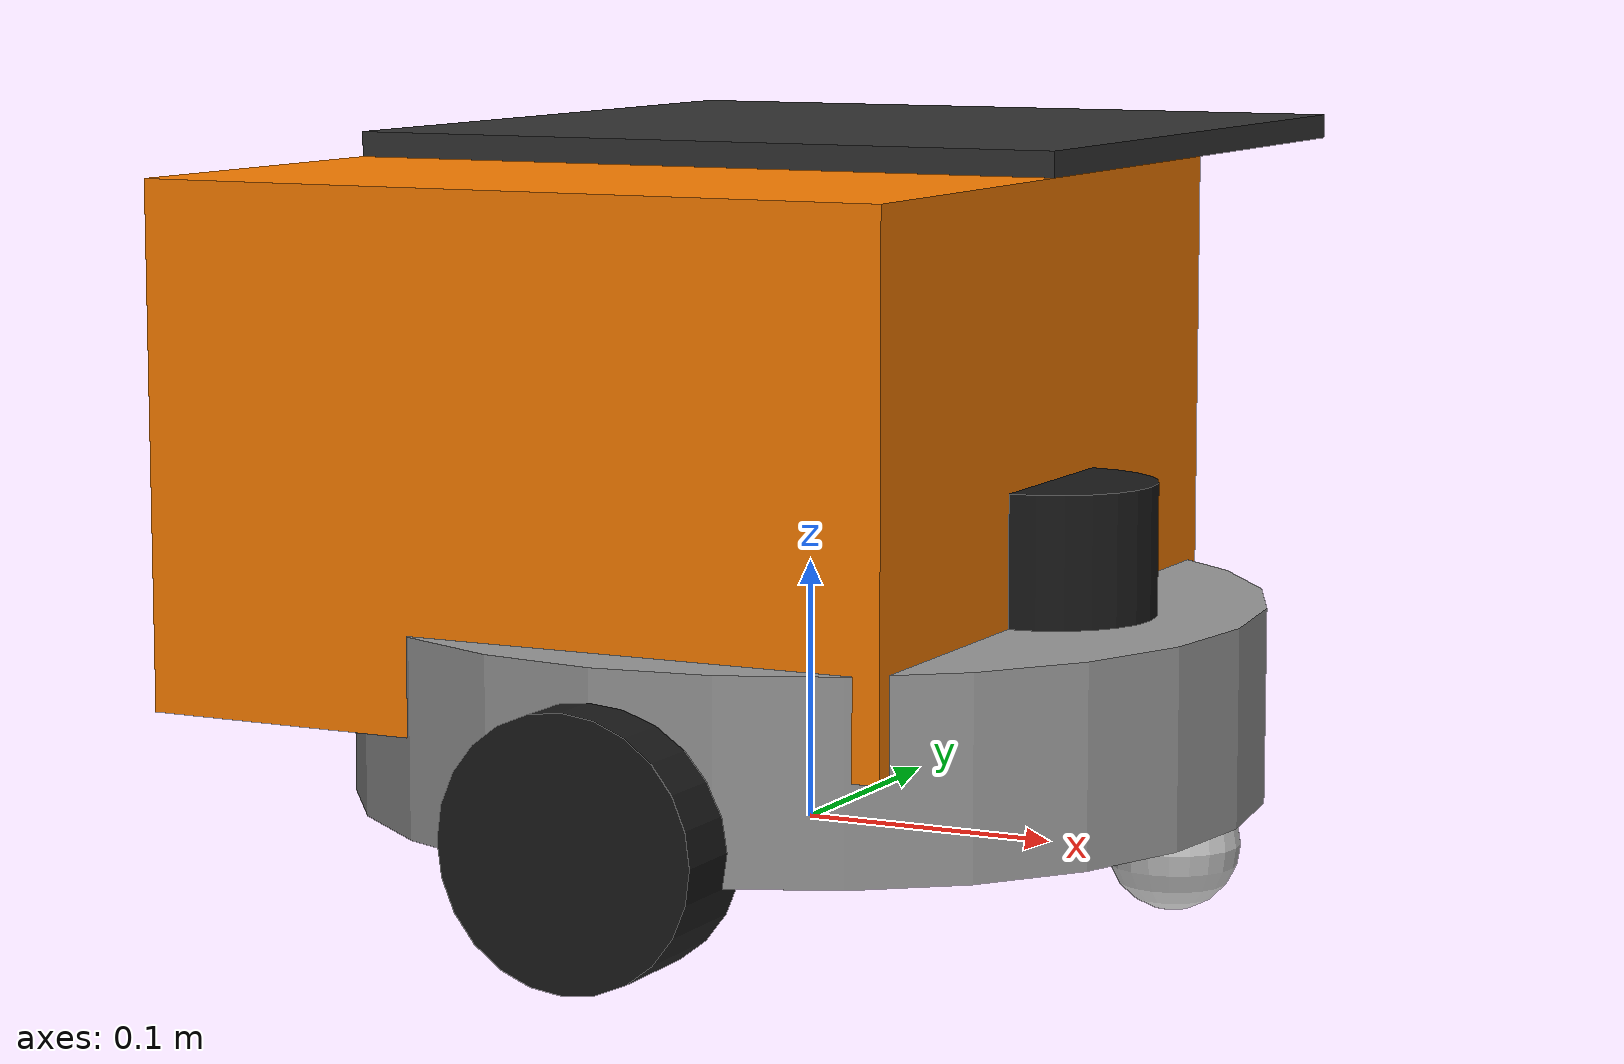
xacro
<?xml version="1.0"?>
<robot name="food_delivery_robot" xmlns:xacro="http://www.ros.org/wiki/xacro">

  <!-- Include compartment macro -->
  <xacro:include filename="$(find food_robot_description)/urdf/compartment.xacro"/>

  <!-- ── Properties ──────────────────────────────────────────── -->
  <xacro:property name="base_radius"      value="0.175"/>
  <xacro:property name="base_height"      value="0.075"/>
  <xacro:property name="base_mass"        value="5.0"/>
  <xacro:property name="wheel_radius"     value="0.05"/>
  <xacro:property name="wheel_width"      value="0.04"/>
  <xacro:property name="wheel_mass"       value="0.5"/>
  <xacro:property name="wheel_sep"        value="0.35"/>
  <xacro:property name="caster_radius"    value="0.025"/>
  <xacro:property name="PI"              value="3.14159265359"/>

  <!-- ── Inertia helpers ─────────────────────────────────────── -->
  <xacro:macro name="cylinder_inertia" params="m r h">
    <inertial>
      <mass value="${m}"/>
      <inertia ixx="${m*(3*r*r+h*h)/12}" ixy="0" ixz="0"
               iyy="${m*(3*r*r+h*h)/12}" iyz="0"
               izz="${m*r*r/2}"/>
    </inertial>
  </xacro:macro>

  <xacro:macro name="sphere_inertia" params="m r">
    <inertial>
      <mass value="${m}"/>
      <inertia ixx="${2*m*r*r/5}" ixy="0" ixz="0"
               iyy="${2*m*r*r/5}" iyz="0"
               izz="${2*m*r*r/5}"/>
    </inertial>
  </xacro:macro>

  <!-- ============================================================
       LINKS
       ============================================================ -->

  <!-- Base footprint (ground truth origin) -->
  <link name="base_footprint"/>

  <!-- Base link -->
  <link name="base_link">
    <visual>
      <geometry>
        <cylinder radius="${base_radius}" length="${base_height}"/>
      </geometry>
      <material name="grey">
        <color rgba="0.6 0.6 0.6 1.0"/>
      </material>
    </visual>
    <collision>
      <geometry>
        <cylinder radius="${base_radius}" length="${base_height}"/>
      </geometry>
    </collision>
    <xacro:cylinder_inertia m="${base_mass}" r="${base_radius}" h="${base_height}"/>
  </link>

  <!-- Left wheel -->
  <link name="left_wheel_link">
    <visual>
      <geometry>
        <cylinder radius="${wheel_radius}" length="${wheel_width}"/>
      </geometry>
      <material name="black">
        <color rgba="0.1 0.1 0.1 1.0"/>
      </material>
    </visual>
    <collision>
      <geometry>
        <cylinder radius="${wheel_radius}" length="${wheel_width}"/>
      </geometry>
    </collision>
    <xacro:cylinder_inertia m="${wheel_mass}" r="${wheel_radius}" h="${wheel_width}"/>
  </link>

  <!-- Right wheel -->
  <link name="right_wheel_link">
    <visual>
      <geometry>
        <cylinder radius="${wheel_radius}" length="${wheel_width}"/>
      </geometry>
      <material name="black"/>
    </visual>
    <collision>
      <geometry>
        <cylinder radius="${wheel_radius}" length="${wheel_width}"/>
      </geometry>
    </collision>
    <xacro:cylinder_inertia m="${wheel_mass}" r="${wheel_radius}" h="${wheel_width}"/>
  </link>

  <!-- Front caster -->
  <link name="front_caster_link">
    <visual>
      <geometry>
        <sphere radius="${caster_radius}"/>
      </geometry>
      <material name="light_grey">
        <color rgba="0.8 0.8 0.8 1.0"/>
      </material>
    </visual>
    <collision>
      <geometry>
        <sphere radius="${caster_radius}"/>
      </geometry>
    </collision>
    <xacro:sphere_inertia m="0.1" r="${caster_radius}"/>
  </link>

  <!-- Lidar -->
  <link name="lidar_link">
    <visual>
      <geometry>
        <cylinder radius="0.04" length="0.05"/>
      </geometry>
      <material name="black"/>
    </visual>
    <collision>
      <geometry>
        <cylinder radius="0.04" length="0.05"/>
      </geometry>
    </collision>
    <xacro:cylinder_inertia m="0.1" r="0.04" h="0.05"/>
  </link>

  <!-- ============================================================
       JOINTS
       ============================================================ -->

  <!-- base_footprint → base_link -->
  <joint name="base_joint" type="fixed">
    <parent link="base_footprint"/>
    <child  link="base_link"/>
    <origin xyz="0 0 0.05" rpy="0 0 0"/>
  </joint>

  <!-- base_link → left_wheel_link -->
  <joint name="left_wheel_joint" type="continuous">
    <parent link="base_link"/>
    <child  link="left_wheel_link"/>
    <origin xyz="0 ${wheel_sep/2} -0.025" rpy="${-PI/2} 0 0"/>
    <axis xyz="0 0 1"/>
    <dynamics damping="0.1" friction="0.1"/>
  </joint>

  <!-- base_link → right_wheel_link -->
  <joint name="right_wheel_joint" type="continuous">
    <parent link="base_link"/>
    <child  link="right_wheel_link"/>
    <origin xyz="0 ${-wheel_sep/2} -0.025" rpy="${-PI/2} 0 0"/>
    <axis xyz="0 0 1"/>
    <dynamics damping="0.1" friction="0.1"/>
  </joint>

  <!-- base_link → front_caster -->
  <joint name="front_caster_joint" type="fixed">
    <parent link="base_link"/>
    <child  link="front_caster_link"/>
    <origin xyz="0.15 0 -0.045" rpy="0 0 0"/>
  </joint>

  <!-- base_link → lidar -->
  <joint name="lidar_joint" type="fixed">
    <parent link="base_link"/>
    <child  link="lidar_link"/>
    <origin xyz="0.1 0 0.0625" rpy="0 0 0"/>
  </joint>

  <!-- ── Compartment (using macro) ─────────────────────────── -->
  <xacro:compartment prefix="food_"
                     parent="base_link"
                     origin_xyz="-0.05 0 0.1"
                     origin_rpy="0 0 0"/>

  <!-- ============================================================
       GAZEBO PROPERTIES
       ============================================================ -->

  <gazebo reference="base_link">
    <material>Gazebo/Grey</material>
  </gazebo>

  <gazebo reference="left_wheel_link">
    <material>Gazebo/Black</material>
    <mu1>1.0</mu1>
    <mu2>1.0</mu2>
  </gazebo>

  <gazebo reference="right_wheel_link">
    <material>Gazebo/Black</material>
    <mu1>1.0</mu1>
    <mu2>1.0</mu2>
  </gazebo>

  <gazebo reference="front_caster_link">
    <material>Gazebo/Grey</material>
    <mu1>0.0</mu1>
    <mu2>0.0</mu2>
  </gazebo>

  <!-- Laser scanner plugin on lidar_link -->
  <gazebo reference="lidar_link">
    <material>Gazebo/Black</material>
    <sensor type="ray" name="laser_sensor">
      <pose>0 0 0 0 0 0</pose>
      <visualize>true</visualize>
      <update_rate>10</update_rate>
      <ray>
        <scan>
          <horizontal>
            <samples>360</samples>
            <resolution>1</resolution>
            <min_angle>-3.14159</min_angle>
            <max_angle>3.14159</max_angle>
          </horizontal>
        </scan>
        <range>
          <min>0.12</min>
          <max>8.0</max>
          <resolution>0.01</resolution>
        </range>
        <noise>
          <type>gaussian</type>
          <mean>0.0</mean>
          <stddev>0.01</stddev>
        </noise>
      </ray>
      <plugin name="gazebo_ros_laser" filename="libgazebo_ros_laser.so">
        <topicName>/scan</topicName>
        <frameName>lidar_link</frameName>
      </plugin>
    </sensor>
  </gazebo>

  <!-- Differential drive plugin -->
  <gazebo>
    <plugin name="differential_drive_controller" filename="libgazebo_ros_diff_drive.so">
      <leftJoint>left_wheel_joint</leftJoint>
      <rightJoint>right_wheel_joint</rightJoint>
      <wheelSeparation>${wheel_sep}</wheelSeparation>
      <wheelDiameter>${2*wheel_radius}</wheelDiameter>
      <robotBaseFrame>base_footprint</robotBaseFrame>
      <commandTopic>cmd_vel</commandTopic>
      <odometryTopic>odom</odometryTopic>
      <odometryFrame>odom</odometryFrame>
      <publishWheelTF>false</publishWheelTF>
      <publishOdomTF>true</publishOdomTF>
      <publishWheelJointState>true</publishWheelJointState>
      <wheelAcceleration>1.0</wheelAcceleration>
      <wheelTorque>20</wheelTorque>
      <updateRate>30</updateRate>
      <legacyMode>false</legacyMode>
    </plugin>
  </gazebo>

</robot>

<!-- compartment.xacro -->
<robot xmlns:xacro="http://www.ros.org/wiki/xacro">

  <xacro:macro name="compartment" params="prefix parent origin_xyz origin_rpy">

    <!-- ── Compartment base box ─────────────────────────────────── -->
    <link name="${prefix}compartment_base_link">
      <visual>
        <geometry>
          <box size="0.30 0.30 0.20"/>
        </geometry>
        <material name="orange">
          <color rgba="1.0 0.5 0.0 1.0"/>
        </material>
      </visual>
      <collision>
        <geometry>
          <box size="0.30 0.30 0.20"/>
        </geometry>
      </collision>
      <inertial>
        <mass value="0.5"/>
        <!-- Solid box inertia: I = m/12*(y^2+z^2), etc. -->
        <inertia ixx="0.00542" ixy="0.0" ixz="0.0"
                 iyy="0.00542" iyz="0.0"
                 izz="0.00750"/>
      </inertial>
    </link>

    <!-- Joint: attach compartment base to parent -->
    <joint name="${prefix}compartment_base_joint" type="fixed">
      <parent link="${parent}"/>
      <child  link="${prefix}compartment_base_link"/>
      <origin xyz="${origin_xyz}" rpy="${origin_rpy}"/>
    </joint>

    <!-- ── Lid link ──────────────────────────────────────────────── -->
    <link name="${prefix}lid_link">
      <visual>
        <origin xyz="0 0 0" rpy="0 0 0"/>
        <geometry>
          <box size="0.30 0.30 0.01"/>
        </geometry>
        <material name="dark_grey">
          <color rgba="0.2 0.2 0.2 1.0"/>
        </material>
      </visual>
      <collision>
        <geometry>
          <box size="0.30 0.30 0.01"/>
        </geometry>
      </collision>
      <inertial>
        <mass value="0.1"/>
        <inertia ixx="0.000758" ixy="0.0" ixz="0.0"
                 iyy="0.000758" iyz="0.0"
                 izz="0.001500"/>
      </inertial>
    </link>

    <!-- Joint: lid is revolute (opens upward along Y axis) -->
    <!-- Closed = 0 rad, Open = -1.57 rad (lifts forward) -->
    <joint name="${prefix}lid_joint" type="revolute">
      <parent link="${prefix}compartment_base_link"/>
      <child  link="${prefix}lid_link"/>
      <!-- Pivot at the top-front edge of the box -->
      <origin xyz="0.0 0.15 0.105" rpy="0 0 0"/>
      <axis xyz="0 1 0"/>
      <limit lower="-1.5707" upper="0.0" effort="10.0" velocity="1.0"/>
      <dynamics damping="0.5" friction="0.1"/>
    </joint>

    <!-- ── Gazebo materials ─────────────────────────────────────── -->
    <gazebo reference="${prefix}compartment_base_link">
      <material>Gazebo/Orange</material>
    </gazebo>

    <gazebo reference="${prefix}lid_link">
      <material>Gazebo/DarkGrey</material>
    </gazebo>

  </xacro:macro>
</robot>
